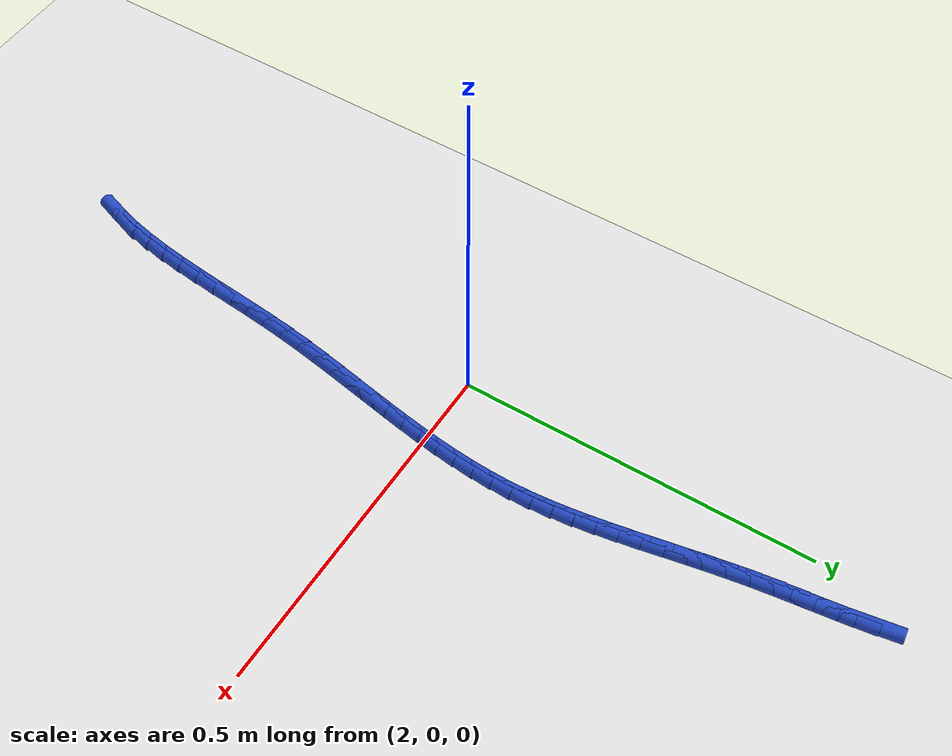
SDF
<sdf version="1.6">
 <world name="default">
  <model name="ground_plane">
   <static>1</static>
   <link name="link">
    <collision name="collision">
     <geometry><plane><normal>0 0 1</normal><size>100 100</size></plane></geometry>
     <surface><friction><ode><mu>100</mu><mu2>50</mu2></ode></friction></surface>
    </collision>
    <visual name="visual">
     <cast_shadows>0</cast_shadows>
     <geometry><plane><normal>0 0 1</normal><size>100 100</size></plane></geometry>
     <material>
      <script><uri>file://media/materials/scripts/gazebo.material</uri><name>Gazebo/WhiteGlow</name></script>
     </material>
    </visual>
   </link>
  </model>
  <model name="line">
   <link name="link_99">
    <pose>2.0490248466001217 0.594314611720776 0.01 0 1.57 -1.4106408211546666</pose>
    <collision name="collision">
     <geometry><cylinder><radius>0.01</radius><length>0.08</length></cylinder></geometry>
    </collision>
    <visual name="visual">
     <material>
      <script><name>Gazebo/Blue</name><uri>file://media/materials/scripts/gazebo.material</uri></script>
     </material>
     <geometry><cylinder><radius>0.01</radius><length>0.08</length></cylinder></geometry>
    </visual>
   </link>
   <link name="link_100">
    <pose>2.0537195962865673 0.5652519760880748 0.01 0 1.57 -1.436176516224542</pose>
    <collision name="collision">
     <geometry><cylinder><radius>0.01</radius><length>0.08</length></cylinder></geometry>
    </collision>
    <visual name="visual">
     <material>
      <script><name>Gazebo/Blue</name><uri>file://media/materials/scripts/gazebo.material</uri></script>
     </material>
     <geometry><cylinder><radius>0.01</radius><length>0.08</length></cylinder></geometry>
    </visual>
   </link>
   <link name="link_101">
    <pose>2.0577027410097046 0.5358428268614347 0.01 0 1.57 -1.448373418073811</pose>
    <collision name="collision">
     <geometry><cylinder><radius>0.01</radius><length>0.08</length></cylinder></geometry>
    </collision>
    <visual name="visual">
     <material>
      <script><name>Gazebo/Blue</name><uri>file://media/materials/scripts/gazebo.material</uri></script>
     </material>
     <geometry><cylinder><radius>0.01</radius><length>0.08</length></cylinder></geometry>
    </visual>
   </link>
   <link name="link_102">
    <pose>2.0613483933812193 0.5062125781286972 0.01 0 1.57 -1.4475500873538036</pose>
    <collision name="collision">
     <geometry><cylinder><radius>0.01</radius><length>0.08</length></cylinder></geometry>
    </collision>
    <visual name="visual">
     <material>
      <script><name>Gazebo/Blue</name><uri>file://media/materials/scripts/gazebo.material</uri></script>
     </material>
     <geometry><cylinder><radius>0.01</radius><length>0.08</length></cylinder></geometry>
    </visual>
   </link>
   <link name="link_103">
    <pose>2.0650306660127953 0.47648664397770385 0.01 0 1.57 -1.4338547506117405</pose>
    <collision name="collision">
     <geometry><cylinder><radius>0.01</radius><length>0.08</length></cylinder></geometry>
    </collision>
    <visual name="visual">
     <material>
      <script><name>Gazebo/Blue</name><uri>file://media/materials/scripts/gazebo.material</uri></script>
     </material>
     <geometry><cylinder><radius>0.01</radius><length>0.08</length></cylinder></geometry>
    </visual>
   </link>
   <link name="link_104">
    <pose>2.0691229460274108 0.4467902781723724 0.01 0 1.57 -1.4126595295496769</pose>
    <collision name="collision">
     <geometry><cylinder><radius>0.01</radius><length>0.08</length></cylinder></geometry>
    </collision>
    <visual name="visual">
     <material>
      <script><name>Gazebo/Blue</name><uri>file://media/materials/scripts/gazebo.material</uri></script>
     </material>
     <geometry><cylinder><radius>0.01</radius><length>0.08</length></cylinder></geometry>
    </visual>
   </link>
   <link name="link_105">
    <pose>2.0738394936798086 0.41721356943048943 0.01 0 1.57 -1.3960899454977034</pose>
    <collision name="collision">
     <geometry><cylinder><radius>0.01</radius><length>0.08</length></cylinder></geometry>
    </collision>
    <visual name="visual">
     <material>
      <script><name>Gazebo/Blue</name><uri>file://media/materials/scripts/gazebo.material</uri></script>
     </material>
     <geometry><cylinder><radius>0.01</radius><length>0.08</length></cylinder></geometry>
    </visual>
   </link>
   <link name="link_106">
    <pose>2.0790368856605475 0.38776756287918457 0.01 0 1.57 -1.385796669029892</pose>
    <collision name="collision">
     <geometry><cylinder><radius>0.01</radius><length>0.08</length></cylinder></geometry>
    </collision>
    <visual name="visual">
     <material>
      <script><name>Gazebo/Blue</name><uri>file://media/materials/scripts/gazebo.material</uri></script>
     </material>
     <geometry><cylinder><radius>0.01</radius><length>0.08</length></cylinder></geometry>
    </visual>
   </link>
   <link name="link_107">
    <pose>2.0845228882675784 0.3584525171597675 0.01 0 1.57 -1.381796054233603</pose>
    <collision name="collision">
     <geometry><cylinder><radius>0.01</radius><length>0.08</length></cylinder></geometry>
    </collision>
    <visual name="visual">
     <material>
      <script><name>Gazebo/Blue</name><uri>file://media/materials/scripts/gazebo.material</uri></script>
     </material>
     <geometry><cylinder><radius>0.01</radius><length>0.08</length></cylinder></geometry>
    </visual>
   </link>
   <link name="link_108">
    <pose>2.0901052677988528 0.32926869091354793 0.01 0 1.57 -1.384144983832363</pose>
    <collision name="collision">
     <geometry><cylinder><radius>0.01</radius><length>0.08</length></cylinder></geometry>
    </collision>
    <visual name="visual">
     <material>
      <script><name>Gazebo/Blue</name><uri>file://media/materials/scripts/gazebo.material</uri></script>
     </material>
     <geometry><cylinder><radius>0.01</radius><length>0.08</length></cylinder></geometry>
    </visual>
   </link>
   <link name="link_109">
    <pose>2.0955917905523203 0.3002163427818364 0.01 0 1.57 -1.3929471483996352</pose>
    <collision name="collision">
     <geometry><cylinder><radius>0.01</radius><length>0.08</length></cylinder></geometry>
    </collision>
    <visual name="visual">
     <material>
      <script><name>Gazebo/Blue</name><uri>file://media/materials/scripts/gazebo.material</uri></script>
     </material>
     <geometry><cylinder><radius>0.01</radius><length>0.08</length></cylinder></geometry>
    </visual>
   </link>
   <link name="link_110">
    <pose>2.100790222825933 0.27129573140594243 0.01 0 1.57 -1.4083524495396587</pose>
    <collision name="collision">
     <geometry><cylinder><radius>0.01</radius><length>0.08</length></cylinder></geometry>
    </collision>
    <visual name="visual">
     <material>
      <script><name>Gazebo/Blue</name><uri>file://media/materials/scripts/gazebo.material</uri></script>
     </material>
     <geometry><cylinder><radius>0.01</radius><length>0.08</length></cylinder></geometry>
    </visual>
   </link>
   <link name="link_111">
    <pose>2.1055083309176412 0.24250711542717593 0.01 0 1.57 -1.4305485589471085</pose>
    <collision name="collision">
     <geometry><cylinder><radius>0.01</radius><length>0.08</length></cylinder></geometry>
    </collision>
    <visual name="visual">
     <material>
      <script><name>Gazebo/Blue</name><uri>file://media/materials/scripts/gazebo.material</uri></script>
     </material>
     <geometry><cylinder><radius>0.01</radius><length>0.08</length></cylinder></geometry>
    </visual>
   </link>
   <link name="link_112">
    <pose>2.109553881125396 0.21385075348684635 0.01 0 1.57 -1.459742875718456</pose>
    <collision name="collision">
     <geometry><cylinder><radius>0.01</radius><length>0.08</length></cylinder></geometry>
    </collision>
    <visual name="visual">
     <material>
      <script><name>Gazebo/Blue</name><uri>file://media/materials/scripts/gazebo.material</uri></script>
     </material>
     <geometry><cylinder><radius>0.01</radius><length>0.08</length></cylinder></geometry>
    </visual>
   </link>
   <link name="link_113">
    <pose>2.112734639747148 0.18532690422626433 0.01 0 1.57 -1.496132536580306</pose>
    <collision name="collision">
     <geometry><cylinder><radius>0.01</radius><length>0.08</length></cylinder></geometry>
    </collision>
    <visual name="visual">
     <material>
      <script><name>Gazebo/Blue</name><uri>file://media/materials/scripts/gazebo.material</uri></script>
     </material>
     <geometry><cylinder><radius>0.01</radius><length>0.08</length></cylinder></geometry>
    </visual>
   </link>
   <link name="link_114">
    <pose>2.114858373080848 0.1569358262867394 0.01 0 1.57 -1.5396754192267976</pose>
    <collision name="collision">
     <geometry><cylinder><radius>0.01</radius><length>0.08</length></cylinder></geometry>
    </collision>
    <visual name="visual">
     <material>
      <script><name>Gazebo/Blue</name><uri>file://media/materials/scripts/gazebo.material</uri></script>
     </material>
     <geometry><cylinder><radius>0.01</radius><length>0.08</length></cylinder></geometry>
    </visual>
   </link>
   <link name="link_115">
    <pose>2.1157380988905805 0.1286769530048305 0.01 0 1.57 1.5565921139285408</pose>
    <collision name="collision">
     <geometry><cylinder><radius>0.01</radius><length>0.08</length></cylinder></geometry>
    </collision>
    <visual name="visual">
     <material>
      <script><name>Gazebo/Blue</name><uri>file://media/materials/scripts/gazebo.material</uri></script>
     </material>
     <geometry><cylinder><radius>0.01</radius><length>0.08</length></cylinder></geometry>
    </visual>
   </link>
   <link name="link_116">
    <pose>2.1153382088482355 0.10052592824534286 0.01 0 1.57 1.5158761207936855</pose>
    <collision name="collision">
     <geometry><cylinder><radius>0.01</radius><length>0.08</length></cylinder></geometry>
    </collision>
    <visual name="visual">
     <material>
      <script><name>Gazebo/Blue</name><uri>file://media/materials/scripts/gazebo.material</uri></script>
     </material>
     <geometry><cylinder><radius>0.01</radius><length>0.08</length></cylinder></geometry>
    </visual>
   </link>
   <link name="link_117">
    <pose>2.113793708436274 0.07243158271560653 0.01 0 1.57 1.4804426431278395</pose>
    <collision name="collision">
     <geometry><cylinder><radius>0.01</radius><length>0.08</length></cylinder></geometry>
    </collision>
    <visual name="visual">
     <material>
      <script><name>Gazebo/Blue</name><uri>file://media/materials/scripts/gazebo.material</uri></script>
     </material>
     <geometry><cylinder><radius>0.01</radius><length>0.08</length></cylinder></geometry>
    </visual>
   </link>
   <link name="link_118">
    <pose>2.111248719860951 0.044341314365838845 0.01 0 1.57 1.4505021827783793</pose>
    <collision name="collision">
     <geometry><cylinder><radius>0.01</radius><length>0.08</length></cylinder></geometry>
    </collision>
    <visual name="visual">
     <material>
      <script><name>Gazebo/Blue</name><uri>file://media/materials/scripts/gazebo.material</uri></script>
     </material>
     <geometry><cylinder><radius>0.01</radius><length>0.08</length></cylinder></geometry>
    </visual>
   </link>
   <link name="link_119">
    <pose>2.107847365328518 0.01620252114625676 0.01 0 1.57 1.4261476091777</pose>
    <collision name="collision">
     <geometry><cylinder><radius>0.01</radius><length>0.08</length></cylinder></geometry>
    </collision>
    <visual name="visual">
     <material>
      <script><name>Gazebo/Blue</name><uri>file://media/materials/scripts/gazebo.material</uri></script>
     </material>
     <geometry><cylinder><radius>0.01</radius><length>0.08</length></cylinder></geometry>
    </visual>
   </link>
   <link name="link_120">
    <pose>2.103733767045229 -0.012037398992921573 0.01 0 1.57 1.4073805308594722</pose>
    <collision name="collision">
     <geometry><cylinder><radius>0.01</radius><length>0.08</length></cylinder></geometry>
    </collision>
    <visual name="visual">
     <material>
      <script><name>Gazebo/Blue</name><uri>file://media/materials/scripts/gazebo.material</uri></script>
     </material>
     <geometry><cylinder><radius>0.01</radius><length>0.08</length></cylinder></geometry>
    </visual>
   </link>
   <link name="link_121">
    <pose>2.099052047217337 -0.040431048101479225 0.01 0 1.57 1.394135592030088</pose>
    <collision name="collision">
     <geometry><cylinder><radius>0.01</radius><length>0.08</length></cylinder></geometry>
    </collision>
    <visual name="visual">
     <material>
      <script><name>Gazebo/Blue</name><uri>file://media/materials/scripts/gazebo.material</uri></script>
     </material>
     <geometry><cylinder><radius>0.01</radius><length>0.08</length></cylinder></geometry>
    </visual>
   </link>
   <link name="link_122">
    <pose>2.0939463280510955 -0.06903102822919878 0.01 0 1.57 1.3863004362870255</pose>
    <collision name="collision">
     <geometry><cylinder><radius>0.01</radius><length>0.08</length></cylinder></geometry>
    </collision>
    <visual name="visual">
     <material>
      <script><name>Gazebo/Blue</name><uri>file://media/materials/scripts/gazebo.material</uri></script>
     </material>
     <geometry><cylinder><radius>0.01</radius><length>0.08</length></cylinder></geometry>
    </visual>
   </link>
   <link name="link_123">
    <pose>2.088560731752757 -0.09788994142586294 0.01 0 1.57 1.3837304192240876</pose>
    <collision name="collision">
     <geometry><cylinder><radius>0.01</radius><length>0.08</length></cylinder></geometry>
    </collision>
    <visual name="visual">
     <material>
      <script><name>Gazebo/Blue</name><uri>file://media/materials/scripts/gazebo.material</uri></script>
     </material>
     <geometry><cylinder><radius>0.01</radius><length>0.08</length></cylinder></geometry>
    </visual>
   </link>
   <link name="link_124">
    <pose>2.0830393805285743 -0.12706038974125428 0.01 0 1.57 1.3862580670129987</pose>
    <collision name="collision">
     <geometry><cylinder><radius>0.01</radius><length>0.08</length></cylinder></geometry>
    </collision>
    <visual name="visual">
     <material>
      <script><name>Gazebo/Blue</name><uri>file://media/materials/scripts/gazebo.material</uri></script>
     </material>
     <geometry><cylinder><radius>0.01</radius><length>0.08</length></cylinder></geometry>
    </visual>
   </link>
   <link name="link_125">
    <pose>2.0775263965848016 -0.15659497522515636 0.01 0 1.57 1.3936978175531176</pose>
    <collision name="collision">
     <geometry><cylinder><radius>0.01</radius><length>0.08</length></cylinder></geometry>
    </collision>
    <visual name="visual">
     <material>
      <script><name>Gazebo/Blue</name><uri>file://media/materials/scripts/gazebo.material</uri></script>
     </material>
     <geometry><cylinder><radius>0.01</radius><length>0.08</length></cylinder></geometry>
    </visual>
   </link>
   <link name="link_126">
    <pose>2.0721659021276917 -0.1865462999273501 0.01 0 1.57 1.4058468593979547</pose>
    <collision name="collision">
     <geometry><cylinder><radius>0.01</radius><length>0.08</length></cylinder></geometry>
    </collision>
    <visual name="visual">
     <material>
      <script><name>Gazebo/Blue</name><uri>file://media/materials/scripts/gazebo.material</uri></script>
     </material>
     <geometry><cylinder><radius>0.01</radius><length>0.08</length></cylinder></geometry>
    </visual>
   </link>
   <link name="link_127">
    <pose>2.0671020193634977 -0.21696696589761905 0.01 0 1.57 1.4224830159001536</pose>
    <collision name="collision">
     <geometry><cylinder><radius>0.01</radius><length>0.08</length></cylinder></geometry>
    </collision>
    <visual name="visual">
     <material>
      <script><name>Gazebo/Blue</name><uri>file://media/materials/scripts/gazebo.material</uri></script>
     </material>
     <geometry><cylinder><radius>0.01</radius><length>0.08</length></cylinder></geometry>
    </visual>
   </link>
   <link name="link_128">
    <pose>2.0624788704984724 -0.2479095751857458 0.01 0 1.57 1.44305764663509</pose>
    <collision name="collision">
     <geometry><cylinder><radius>0.01</radius><length>0.08</length></cylinder></geometry>
    </collision>
    <visual name="visual">
     <material>
      <script><name>Gazebo/Blue</name><uri>file://media/materials/scripts/gazebo.material</uri></script>
     </material>
     <geometry><cylinder><radius>0.01</radius><length>0.08</length></cylinder></geometry>
    </visual>
   </link>
   <link name="link_129">
    <pose>2.058431626851117 -0.2794208329406923 0.01 0 1.57 1.4610842772702353</pose>
    <collision name="collision">
     <geometry><cylinder><radius>0.01</radius><length>0.08</length></cylinder></geometry>
    </collision>
    <visual name="visual">
     <material>
      <script><name>Gazebo/Blue</name><uri>file://media/materials/scripts/gazebo.material</uri></script>
     </material>
     <geometry><cylinder><radius>0.01</radius><length>0.08</length></cylinder></geometry>
    </visual>
   </link>
   <link name="link_130">
    <pose>2.054906456244535 -0.311422927626824 0.01 0 1.57 1.4709019238350036</pose>
    <collision name="collision">
     <geometry><cylinder><radius>0.01</radius><length>0.08</length></cylinder></geometry>
    </collision>
    <visual name="visual">
     <material>
      <script><name>Gazebo/Blue</name><uri>file://media/materials/scripts/gazebo.material</uri></script>
     </material>
     <geometry><cylinder><radius>0.01</radius><length>0.08</length></cylinder></geometry>
    </visual>
   </link>
   <link name="link_131">
    <pose>2.051669444152653 -0.3437194083308241 0.01 0 1.57 1.472626848817037</pose>
    <collision name="collision">
     <geometry><cylinder><radius>0.01</radius><length>0.08</length></cylinder></geometry>
    </collision>
    <visual name="visual">
     <material>
      <script><name>Gazebo/Blue</name><uri>file://media/materials/scripts/gazebo.material</uri></script>
     </material>
     <geometry><cylinder><radius>0.01</radius><length>0.08</length></cylinder></geometry>
    </visual>
   </link>
   <link name="link_132">
    <pose>2.048479510698602 -0.3761091035614659 0.01 0 1.57 1.4663527186427072</pose>
    <collision name="collision">
     <geometry><cylinder><radius>0.01</radius><length>0.08</length></cylinder></geometry>
    </collision>
    <visual name="visual">
     <material>
      <script><name>Gazebo/Blue</name><uri>file://media/materials/scripts/gazebo.material</uri></script>
     </material>
     <geometry><cylinder><radius>0.01</radius><length>0.08</length></cylinder></geometry>
    </visual>
   </link>
   <link name="link_133">
    <pose>2.0450955760055085 -0.4083908418275201 0.01 0 1.57 1.4519130954995598</pose>
    <collision name="collision">
     <geometry><cylinder><radius>0.01</radius><length>0.08</length></cylinder></geometry>
    </collision>
    <visual name="visual">
     <material>
      <script><name>Gazebo/Blue</name><uri>file://media/materials/scripts/gazebo.material</uri></script>
     </material>
     <geometry><cylinder><radius>0.01</radius><length>0.08</length></cylinder></geometry>
    </visual>
   </link>
   <link name="link_134">
    <pose>2.0412765601965033 -0.44036345163776025 0.01 0 1.57 1.4288817946585979</pose>
    <collision name="collision">
     <geometry><cylinder><radius>0.01</radius><length>0.08</length></cylinder></geometry>
    </collision>
    <visual name="visual">
     <material>
      <script><name>Gazebo/Blue</name><uri>file://media/materials/scripts/gazebo.material</uri></script>
     </material>
     <geometry><cylinder><radius>0.01</radius><length>0.08</length></cylinder></geometry>
    </visual>
   </link>
   <link name="link_135">
    <pose>2.036781383394715 -0.47182576150095884 0.01 0 1.57 1.3965720204944154</pose>
    <collision name="collision">
     <geometry><cylinder><radius>0.01</radius><length>0.08</length></cylinder></geometry>
    </collision>
    <visual name="visual">
     <material>
      <script><name>Gazebo/Blue</name><uri>file://media/materials/scripts/gazebo.material</uri></script>
     </material>
     <geometry><cylinder><radius>0.01</radius><length>0.08</length></cylinder></geometry>
    </visual>
   </link>
   <link name="link_136">
    <pose>2.031368965723272 -0.5025765999258883 0.01 0 1.57 1.3540435075014292</pose>
    <collision name="collision">
     <geometry><cylinder><radius>0.01</radius><length>0.08</length></cylinder></geometry>
    </collision>
    <visual name="visual">
     <material>
      <script><name>Gazebo/Blue</name><uri>file://media/materials/scripts/gazebo.material</uri></script>
     </material>
     <geometry><cylinder><radius>0.01</radius><length>0.08</length></cylinder></geometry>
    </visual>
   </link>
   <link name="link_137">
    <pose>2.0247982273053045 -0.5324147954213214 0.01 0 1.57 1.3001357138680694</pose>
    <collision name="collision">
     <geometry><cylinder><radius>0.01</radius><length>0.08</length></cylinder></geometry>
    </collision>
    <visual name="visual">
     <material>
      <script><name>Gazebo/Blue</name><uri>file://media/materials/scripts/gazebo.material</uri></script>
     </material>
     <geometry><cylinder><radius>0.01</radius><length>0.08</length></cylinder></geometry>
    </visual>
   </link>
   <link name="link_138">
    <pose>2.0168280882639404 -0.5611391764960302 0.01 0 1.57 1.2335583133823964</pose>
    <collision name="collision">
     <geometry><cylinder><radius>0.01</radius><length>0.08</length></cylinder></geometry>
    </collision>
    <visual name="visual">
     <material>
      <script><name>Gazebo/Blue</name><uri>file://media/materials/scripts/gazebo.material</uri></script>
     </material>
     <geometry><cylinder><radius>0.01</radius><length>0.08</length></cylinder></geometry>
    </visual>
   </link>
  </model>
 </world>
</sdf>
